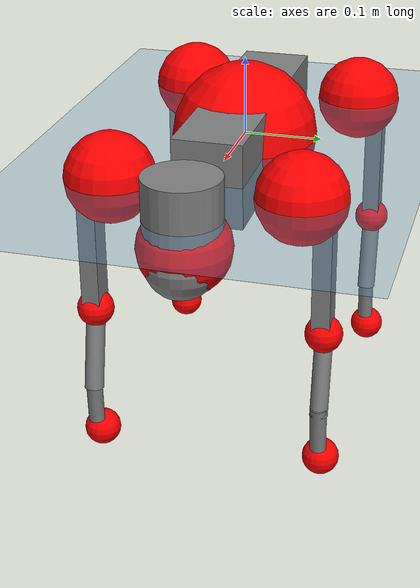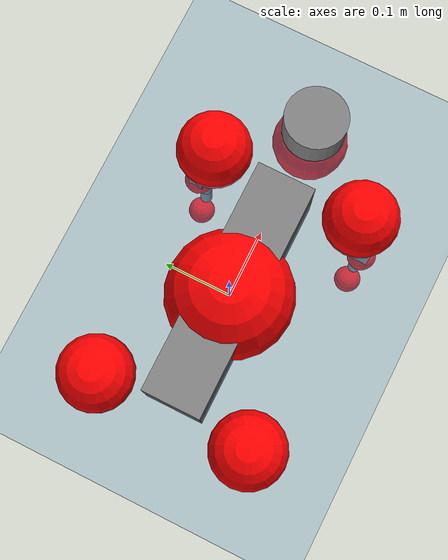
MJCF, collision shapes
<mujoco model="go2">
  <compiler angle="radian" assetdir="assets" balanceinertia="true" inertiafromgeom="false"/>

  <option timestep="0.005" density="1.2" viscosity="2e-05"/>

  <size nkey="1"/>

  <visual>
    <quality shadowsize="8192"/>
    <map shadowclip="0.5"/>
  </visual>

  <default>
    <default class="/">
      <geom contype="0" conaffinity="0" group="1" solref="-1000 -80"/>
      <site size="0.01 0.005 0.005" group="5"/>
      <general forcelimited="true" biastype="affine" gainprm="20" biasprm="0 -20 -0.5"/>
      <default class="go2">
        <joint armature="0.01" damping="0.01" frictionloss="0.2"/>
        <geom condim="1" margin="0.001"/>
        <default class="visual">
          <geom type="mesh" group="2"/>
        </default>
        <default class="collision">
          <geom group="3"/>
          <default class="foot">
            <geom size="0.022 0 0" condim="6" priority="1" friction="0.8 0.02 0.01" solimp="0.015 1 0.022"/>
          </default>
        </default>
        <default class="reward_collision_sphere">
          <geom group="5" rgba="1 0 0 1"/>
        </default>
      </default>
    </default>
  </default>

  <asset>
    <texture type="skybox" colorspace="auto" name="//unnamed_texture_0" builtin="gradient" rgb1="0.95 0.95 0.95" rgb2="0.95 0.95 0.95" width="100" height="600"/>
    <texture type="2d" colorspace="auto" name="texplane" builtin="checker" rgb1="0.345 0.575 0.748" rgb2="0.345 0.575 0.748" markrgb="1 1 1" width="512" height="512"/>
    <material name="MatPlane" class="/" texture="texplane" texuniform="true" texrepeat="2 2" specular="0.9"/>
    <material name="metal" class="/" rgba="0.9 0.95 0.95 1"/>
    <material name="black" class="/" rgba="0 0 0 1"/>
    <material name="white" class="/"/>
    <material name="gray" class="/" rgba="0.671705 0.692426 0.77427 1"/>
    <mesh name="base_0" class="/" file="base_0.obj"/>
    <mesh name="base_1" class="/" file="base_1.obj"/>
    <mesh name="base_2" class="/" file="base_2.obj"/>
    <mesh name="base_3" class="/" file="base_3.obj"/>
    <mesh name="base_4" class="/" file="base_4.obj"/>
    <mesh name="hip_0" class="/" file="hip_0.obj"/>
    <mesh name="hip_1" class="/" file="hip_1.obj"/>
    <mesh name="thigh_0" class="/" file="thigh_0.obj"/>
    <mesh name="thigh_1" class="/" file="thigh_1.obj"/>
    <mesh name="thigh_mirror_0" class="/" file="thigh_mirror_0.obj"/>
    <mesh name="thigh_mirror_1" class="/" file="thigh_mirror_1.obj"/>
    <mesh name="calf_0" class="/" file="calf_0.obj"/>
    <mesh name="calf_1" class="/" file="calf_1.obj"/>
    <mesh name="calf_mirror_0" class="/" file="calf_mirror_0.obj"/>
    <mesh name="calf_mirror_1" class="/" file="calf_mirror_1.obj"/>
    <mesh name="foot" class="/" file="foot.obj"/>
  </asset>

  <worldbody>
    <geom name="floor" class="/" size="100 100 0.125" type="plane" group="0" material="MatPlane"/>
    <light name="toplight_shadow" class="/" pos="0 0 5" dir="0.0990148 0.0990148 -0.990148" type="directional" ambient="0.04 0.04 0.04" diffuse="0.55 0.55 0.55" specular="0.12 0.12 0.12"/>
    <light name="toplight_fill" class="/" pos="0 0 5" dir="0.0990148 0.0990148 -0.990148" type="directional" castshadow="false" ambient="0.04 0.04 0.04" diffuse="0.3 0.3 0.3" specular="0.08 0.08 0.08"/>
    <body name="trunk" childclass="go2" pos="0.000970316 -0.000127304 -0.000403081" quat="1 -5.24251e-05 0.000156567 -8.28249e-05">
      <inertial pos="0.0172681 -0.00287892 -0.00461055" quat="-0.00260866 0.716821 -0.000862437 0.697252" mass="5.77024" diaginertia="0.0810924 0.101178 0.00994827"/>
      <joint name="//unnamed_joint_0" type="free" armature="0" damping="0" frictionloss="0"/>
      <geom name="//unnamed_geom_1" class="visual" material="black" mesh="base_0"/>
      <geom name="//unnamed_geom_2" class="visual" material="black" mesh="base_1"/>
      <geom name="//unnamed_geom_3" class="visual" material="black" mesh="base_2"/>
      <geom name="//unnamed_geom_4" class="visual" material="white" mesh="base_3"/>
      <geom name="//unnamed_geom_5" class="visual" material="gray" mesh="base_4"/>
      <geom name="trunk_1" class="collision" size="0.17493 0.0434768 0.0530092" type="box"/>
      <geom name="trunk_2" class="collision" size="0.0464993 0.0418494" pos="0.269675 0 0.00837135" type="cylinder"/>
      <geom name="trunk_3" class="collision" size="0.0437093" pos="0.277245 0 -0.0502281"/>
      <geom name="//unnamed_geom_9" class="reward_collision_sphere" size="0.0929986"/>
      <geom name="//unnamed_geom_10" class="reward_collision_sphere" size="0.0557991" pos="0.264944 0 -0.0376711"/>
      <site name="imu" pos="-0.0105196 0.00080626 0.021748" size="0.00929986"/>
      <camera name="track" pos="0 -2.01318 0" quat="0.707107 0.707107 0 0" mode="trackcom"/>
      <camera name="ego_camera" pos="0.295224 0 0.0376711" quat="-0.5 -0.5 0.5 0.5"/>
      <body name="FL_hip" pos="0.179826 0.0443168 -0.00139304" quat="1 -0.000345347 0.000254623 0.00010795">
        <inertial pos="-0.00508775 1.18826e-05 -0.000584867" quat="0.497804 0.498951 0.504765 0.498449" mass="0.534035" diaginertia="0.00065125 0.000577786 0.000191386"/>
        <joint name="FL_hip_joint" pos="0 0 0" axis="0.999983 -0.00492424 0.00315598" range="-1.04738 1.05071" armature="0.00956049" damping="0.0109811" frictionloss="0.168682"/>
        <geom name="//unnamed_geom_11" class="visual" material="metal" mesh="hip_0"/>
        <geom name="//unnamed_geom_12" class="visual" material="gray" mesh="hip_1"/>
        <geom name="//unnamed_geom_13" class="collision" size="0.0427793 0.0185997" pos="0 0.0805273 0" quat="0.707107 0.707107 0 0" type="cylinder"/>
        <geom name="//unnamed_geom_14" class="reward_collision_sphere" size="0.0557991" pos="0 0.0704614 0"/>
        <body name="FL_thigh" pos="-0.00216447 0.0981843 0.00230906" quat="0.999999 0.000449892 0.000714631 0.00101162">
          <inertial pos="-0.00347858 -0.0219961 -0.0261849" quat="0.824084 0.0852881 -0.0132094 0.559855" mass="0.903545" diaginertia="0.00450485 0.00584396 0.000358333"/>
          <joint name="FL_thigh_joint" pos="0 0 0" axis="0.0011388 0.999993 -0.00356264" stiffness="0.00773122" range="-1.51434 3.52853" armature="0.00978135" damping="0.0155397" frictionloss="0.174278"/>
          <geom name="//unnamed_geom_15" class="visual" material="metal" mesh="thigh_0"/>
          <geom name="//unnamed_geom_16" class="visual" material="gray" mesh="thigh_1"/>
          <geom name="//unnamed_geom_17" class="collision" size="0.0990435 0.0113923 0.0158098" pos="0 0 -0.0891549" quat="0.707107 0 0.707107 0" type="box"/>
          <body name="FL_calf" pos="-1.07866e-05 0.00174361 -0.177751" quat="1 -0.000151738 0.000307843 0.000317936">
            <inertial pos="0.00606978 -0.00161072 -0.118773" quat="0.710124 -1.11045e-06 -0.00391777 0.704066" mass="0.195902" diaginertia="0.00110742 0.00152706 2.18243e-05"/>
            <joint name="FL_calf_joint" pos="0 0 0" axis="-0.0129732 0.999911 -0.00297814" range="-2.68826 -0.834198" armature="0.00907286" damping="0.00213117" frictionloss="0.188004"/>
            <geom name="//unnamed_geom_18" class="visual" material="gray" mesh="calf_0"/>
            <geom name="//unnamed_geom_19" class="visual" material="black" mesh="calf_1"/>
            <geom name="FL_calf0" class="collision" size="0.0111598 0.0557991" pos="0.00756984 0 -0.0502281" quat="0.994493 0 -0.104807 0" type="cylinder"/>
            <geom name="//unnamed_geom_21" class="collision" size="0.0102298 0.0302245" pos="0.0189246 0 -0.123896" quat="0.999688 0 0.0249974 0" type="cylinder"/>
            <geom name="//unnamed_geom_22" class="visual" pos="0 0 -0.17831" quat="1 0 0 0" material="black" mesh="foot"/>
            <geom name="FL_foot" class="foot" size="0.0162319" pos="-0.00189246 0 -0.17831"/>
            <geom name="//unnamed_geom_24" class="reward_collision_sphere" size="0.0232496"/>
            <geom name="//unnamed_geom_25" class="reward_collision_sphere" size="0.0232496" pos="-0.00189246 0 -0.17831"/>
            <site name="FL_foot" class="foot" pos="-0.00189246 0 -0.17831" size="0.00929986"/>
          </body>
        </body>
      </body>
      <body name="FR_hip" pos="0.180721 -0.0470056 0.000262072" quat="1 -2.55114e-05 2.09539e-05 -0.000246227">
        <inertial pos="-0.00646615 -0.00422105 -0.0022645" quat="0.489504 0.510621 0.50667 0.492888" mass="0.538263" diaginertia="0.000642131 0.000629407 0.000189366"/>
        <joint name="FR_hip_joint" pos="0 0 0" axis="0.999896 -0.00764287 -0.0122521" range="-1.07072 1.05457" armature="0.00932646" damping="0" frictionloss="0.183848"/>
        <geom name="//unnamed_geom_26" class="visual" pos="0 1.47624e-09 6.33188e-08" quat="4.63268e-05 1 0 0" material="metal" mesh="hip_0"/>
        <geom name="//unnamed_geom_27" class="visual" pos="0 2.39315e-09 -1.56612e-07" quat="4.63268e-05 1 0 0" material="gray" mesh="hip_1"/>
        <geom name="//unnamed_geom_28" class="collision" size="0.0427793 0.0185997" pos="0 -0.0805273 0" quat="0.707107 0.707107 0 0" type="cylinder"/>
        <geom name="//unnamed_geom_29" class="reward_collision_sphere" size="0.0557991" pos="0 -0.0704614 0"/>
        <body name="FR_thigh" pos="0.00151066 -0.0978541 -0.00222662" quat="0.999999 -0.000453483 0.000684788 -0.000964017">
          <inertial pos="-0.000865214 0.0231895 -0.0286124" quat="0.550428 -0.0151574 0.0895924 0.829923" mass="0.967308" diaginertia="0.0044772 0.00591766 0.000378535"/>
          <joint name="FR_thigh_joint" pos="0 0 0" axis="-0.00125165 -0.999989 0.00454842" stiffness="0.000570508" range="-3.50024 1.59268" armature="0.00855555" damping="0.0115271" frictionloss="0.18767"/>
          <geom name="//unnamed_geom_30" class="visual" material="metal" mesh="thigh_mirror_0"/>
          <geom name="//unnamed_geom_31" class="visual" material="gray" mesh="thigh_mirror_1"/>
          <geom name="//unnamed_geom_32" class="collision" size="0.0990435 0.0113923 0.0158098" pos="0 0 -0.0891549" quat="0.707107 0 0.707107 0" type="box"/>
          <body name="FR_calf" pos="-0.0012093 -2.13416e-06 -0.177799" quat="1 4.69135e-05 -0.000226684 0.000670276">
            <inertial pos="0.00355413 0.000741381 -0.118351" quat="0.701457 -0.0110695 0.012829 0.71251" mass="0.203435" diaginertia="0.00116595 0.00154974 2.24174e-05"/>
            <joint name="FR_calf_joint" pos="0 0 0" axis="-0.00576077 -0.999976 0.00384321" range="0.782594 2.69395" armature="0.0105788" damping="0.0209311" frictionloss="0.189739"/>
            <geom name="//unnamed_geom_33" class="visual" material="gray" mesh="calf_mirror_0"/>
            <geom name="//unnamed_geom_34" class="visual" material="black" mesh="calf_mirror_1"/>
            <geom name="FR_calf0" class="collision" size="0.0120898 0.0557991" pos="0.0094623 0 -0.0502281" quat="0.995004 0 -0.0998334 0" type="cylinder"/>
            <geom name="//unnamed_geom_36" class="collision" size="0.0102298 0.0302245" pos="0.0189246 0 -0.123896" quat="0.999688 0 0.0249974 0" type="cylinder"/>
            <geom name="//unnamed_geom_37" class="visual" pos="0 0 -0.17831" quat="1 0 0 0" material="black" mesh="foot"/>
            <geom name="FR_foot" class="foot" size="0.0206512" pos="-0.00189246 0 -0.17831"/>
            <geom name="//unnamed_geom_39" class="reward_collision_sphere" size="0.0232496"/>
            <geom name="//unnamed_geom_40" class="reward_collision_sphere" size="0.0232496" pos="-0.00189246 0 -0.17831"/>
            <site name="FR_foot" class="foot" pos="-0.00189246 0 -0.17831" size="0.00929986"/>
          </body>
        </body>
      </body>
      <body name="RL_hip" pos="-0.180201 0.0455557 -0.00312505" quat="1 -6.51565e-06 2.59178e-06 3.39642e-06">
        <inertial pos="0.00479557 0.00424496 -0.00178613" quat="0.501194 0.508889 0.493079 0.496699" mass="0.564747" diaginertia="0.000714517 0.000645369 0.000201364"/>
        <joint name="RL_hip_joint" pos="0 0 0" axis="-0.99995 -0.00292604 -0.0095759" range="-1.05206 1.03533" armature="0.009571" damping="0" frictionloss="0.187441"/>
        <geom name="//unnamed_geom_41" class="visual" pos="-9.50386e-10 0 -1.86297e-07" quat="4.63268e-05 0 1 0" material="metal" mesh="hip_0"/>
        <geom name="//unnamed_geom_42" class="visual" pos="-1.54069e-09 0 -1.65219e-07" quat="4.63268e-05 0 1 0" material="gray" mesh="hip_1"/>
        <geom name="//unnamed_geom_43" class="collision" size="0.0427793 0.0185997" pos="0 0.0805273 0" quat="0.707107 0.707107 0 0" type="cylinder"/>
        <geom name="//unnamed_geom_44" class="reward_collision_sphere" size="0.0557991" pos="0 0.0704614 0"/>
        <body name="RL_thigh" pos="0.000298389 0.0963176 0.000618984" quat="1 1.13907e-05 7.29791e-05 4.18032e-05">
          <inertial pos="-0.00595464 -0.0226247 -0.0301549" quat="0.829535 0.0847139 -0.0200395 0.551628" mass="0.901998" diaginertia="0.00425307 0.00603128 0.000350943"/>
          <joint name="RL_thigh_joint" pos="0 0 0" axis="0.0002474 0.999953 0.00973006" stiffness="0.0148182" range="-0.537986 4.50026" armature="0.00881285" damping="0" frictionloss="0.184174"/>
          <geom name="//unnamed_geom_45" class="visual" material="metal" mesh="thigh_0"/>
          <geom name="//unnamed_geom_46" class="visual" material="gray" mesh="thigh_1"/>
          <geom name="//unnamed_geom_47" class="collision" size="0.0990435 0.0113923 0.0158098" pos="0 0 -0.0891549" quat="0.707107 0 0.707107 0" type="box"/>
          <body name="RL_calf" pos="-0.000208231 9.22227e-05 -0.177947" quat="1 -0.000235995 -1.58141e-05 -0.000102642">
            <inertial pos="0.00672053 0.00219786 -0.117793" quat="0.705103 -0.000197664 -0.00321508 0.709098" mass="0.199558" diaginertia="0.0011373 0.00161127 2.23249e-05"/>
            <joint name="RL_calf_joint" pos="0 0 0" axis="0.0019809 0.999951 -0.00974488" stiffness="0.0034744" range="-2.66888 -0.878029" armature="0.0105848" damping="0.0169965" frictionloss="0.162205"/>
            <geom name="//unnamed_geom_48" class="visual" material="gray" mesh="calf_0"/>
            <geom name="//unnamed_geom_49" class="visual" material="black" mesh="calf_1"/>
            <geom name="RL_calf0" class="collision" size="0.0120898 0.0557991" pos="0.0094623 0 -0.0502281" quat="0.995004 0 -0.0998334 0" type="cylinder"/>
            <geom name="//unnamed_geom_51" class="collision" size="0.0102298 0.0302245" pos="0.0189246 0 -0.123896" quat="0.999688 0 0.0249974 0" type="cylinder"/>
            <geom name="//unnamed_geom_52" class="visual" pos="0 0 -0.17831" quat="1 0 0 0" material="black" mesh="foot"/>
            <geom name="RL_foot" class="foot" size="0.0182035" pos="-0.00189246 0 -0.17831"/>
            <geom name="//unnamed_geom_54" class="reward_collision_sphere" size="0.0232496"/>
            <geom name="//unnamed_geom_55" class="reward_collision_sphere" size="0.0232496" pos="-0.00189246 0 -0.17831"/>
            <site name="RL_foot" class="foot" pos="-0.00189246 0 -0.17831" size="0.00929986"/>
          </body>
        </body>
      </body>
      <body name="RR_hip" pos="-0.180522 -0.0481043 -5.73381e-05" quat="1 0.00018764 -0.000164833 0.000460851">
        <inertial pos="0.00361439 -0.00082083 -0.00289338" quat="0.492864 0.504386 0.492582 0.509944" mass="0.544792" diaginertia="0.00064904 0.000597552 0.00019052"/>
        <joint name="RR_hip_joint" pos="0 0 0" axis="-0.999902 0.000424785 0.0140246" stiffness="0.00227129" range="-1.10056 1.06323" armature="0.00926114" damping="0.00167261" frictionloss="0.184783"/>
        <geom name="//unnamed_geom_56" class="visual" pos="9.52475e-10 1.47624e-09 -2.49616e-07" quat="2.14617e-09 4.63268e-05 4.63268e-05 -1" material="metal" mesh="hip_0"/>
        <geom name="//unnamed_geom_57" class="visual" pos="1.53552e-09 2.39315e-09 -8.60774e-09" quat="2.14617e-09 4.63268e-05 4.63268e-05 -1" material="gray" mesh="hip_1"/>
        <geom name="//unnamed_geom_58" class="collision" size="0.0427793 0.0185997" pos="0 -0.0805273 0" quat="0.707107 0.707107 0 0" type="cylinder"/>
        <geom name="//unnamed_geom_59" class="reward_collision_sphere" size="0.0557991" pos="0 -0.0704614 0"/>
        <body name="RR_thigh" pos="0.00270297 -0.0958555 -0.00177965" quat="0.999999 0.000646544 -0.00100449 0.000228582">
          <inertial pos="-0.00302033 0.0238526 -0.0284671" quat="0.551802 -0.0198882 0.0846248 0.829432" mass="0.881416" diaginertia="0.00429141 0.00591377 0.000356759"/>
          <joint name="RR_thigh_joint" pos="0 0 0" axis="-0.000106472 -0.999998 0.00197582" stiffness="0.0035242" range="-4.51013 0.539943" armature="0.00976682" damping="0.0157356" frictionloss="0.189053"/>
          <geom name="//unnamed_geom_60" class="visual" material="metal" mesh="thigh_mirror_0"/>
          <geom name="//unnamed_geom_61" class="visual" material="gray" mesh="thigh_mirror_1"/>
          <geom name="//unnamed_geom_62" class="collision" size="0.0990435 0.0113923 0.0158098" pos="0 0 -0.0891549" quat="0.707107 0 0.707107 0" type="box"/>
          <body name="RR_calf" pos="-6.91026e-05 0.00219397 -0.177694" quat="0.999999 -0.000279857 0.00127736 -1.60624e-05">
            <inertial pos="0.00825664 0.000259707 -0.119458" quat="0.704684 -0.00362385 0.0132182 0.709389" mass="0.197779" diaginertia="0.00111384 0.00151416 2.16351e-05"/>
            <joint name="RR_calf_joint" pos="0 0 0" axis="0.00104758 -0.999999 0.000936933" range="0.828412 2.78025" armature="0.00937015" damping="0.0204275" frictionloss="0.188932"/>
            <geom name="//unnamed_geom_63" class="visual" material="gray" mesh="calf_mirror_0"/>
            <geom name="//unnamed_geom_64" class="visual" material="black" mesh="calf_mirror_1"/>
            <geom name="RR_calf0" class="collision" size="0.0120898 0.0557991" pos="0.0094623 0 -0.0502281" quat="0.995004 0 -0.0998334 0" type="cylinder"/>
            <geom name="//unnamed_geom_66" class="collision" size="0.0102298 0.0302245" pos="0.0189246 0 -0.123896" quat="0.999688 0 0.0249974 0" type="cylinder"/>
            <geom name="//unnamed_geom_67" class="visual" pos="0 0 -0.17831" quat="1 0 0 0" material="black" mesh="foot"/>
            <geom name="RR_foot" class="foot" size="0.0198561" pos="-0.00189246 0 -0.17831"/>
            <geom name="//unnamed_geom_69" class="reward_collision_sphere" size="0.0232496"/>
            <geom name="//unnamed_geom_70" class="reward_collision_sphere" size="0.0232496" pos="-0.00189246 0 -0.17831"/>
            <site name="RR_foot" class="foot" pos="-0.00189246 0 -0.17831" size="0.00929986"/>
          </body>
        </body>
      </body>
    </body>
  </worldbody>

  <contact>
    <pair class="/" geom1="floor" geom2="FL_foot" name="//unnamed_contact_0"/>
    <pair class="/" geom1="floor" geom2="FR_foot" name="//unnamed_contact_1"/>
    <pair class="/" geom1="floor" geom2="RL_foot" name="//unnamed_contact_2"/>
    <pair class="/" geom1="floor" geom2="RR_foot" name="//unnamed_contact_3"/>
  </contact>

  <actuator>
    <general name="FL_hip" class="/" joint="FL_hip_joint" forcerange="-19.9741 19.9741" gainprm="18.1447" biasprm="0 -18.1447 -0.451025"/>
    <general name="FL_thigh" class="/" joint="FL_thigh_joint" forcerange="-19.8182 19.8182" gainprm="18.1447" biasprm="0 -18.1447 -0.451025"/>
    <general name="FL_calf" class="/" joint="FL_calf_joint" forcerange="-42.6808 42.6808" gainprm="18.1447" biasprm="0 -18.1447 -0.451025"/>
    <general name="FR_hip" class="/" joint="FR_hip_joint" forcerange="-22.407 22.407" gainprm="18.1447" biasprm="0 -18.1447 -0.451025"/>
    <general name="FR_thigh" class="/" joint="FR_thigh_joint" forcerange="-23.7211 23.7211" gainprm="18.1447" biasprm="0 -18.1447 -0.451025"/>
    <general name="FR_calf" class="/" joint="FR_calf_joint" forcerange="-43.7566 43.7566" gainprm="18.1447" biasprm="0 -18.1447 -0.451025"/>
    <general name="RL_hip" class="/" joint="RL_hip_joint" forcerange="-22.2416 22.2416" gainprm="18.1447" biasprm="0 -18.1447 -0.451025"/>
    <general name="RL_thigh" class="/" joint="RL_thigh_joint" forcerange="-20.2741 20.2741" gainprm="18.1447" biasprm="0 -18.1447 -0.451025"/>
    <general name="RL_calf" class="/" joint="RL_calf_joint" forcerange="-41.9484 41.9484" gainprm="18.1447" biasprm="0 -18.1447 -0.451025"/>
    <general name="RR_hip" class="/" joint="RR_hip_joint" forcerange="-22.6664 22.6664" gainprm="18.1447" biasprm="0 -18.1447 -0.451025"/>
    <general name="RR_thigh" class="/" joint="RR_thigh_joint" forcerange="-24.2369 24.2369" gainprm="18.1447" biasprm="0 -18.1447 -0.451025"/>
    <general name="RR_calf" class="/" joint="RR_calf_joint" forcerange="-40.7285 40.7285" gainprm="18.1447" biasprm="0 -18.1447 -0.451025"/>
  </actuator>

  <sensor>
    <gyro site="imu" name="imu_angular_velocity"/>
    <velocimeter site="imu" name="imu_linear_velocity"/>
    <framelinvel objtype="site" objname="FL_foot" name="FL_foot_global_linear_velocity"/>
    <framelinvel objtype="site" objname="FR_foot" name="FR_foot_global_linear_velocity"/>
    <framelinvel objtype="site" objname="RL_foot" name="RL_foot_global_linear_velocity"/>
    <framelinvel objtype="site" objname="RR_foot" name="RR_foot_global_linear_velocity"/>
  </sensor>

  <keyframe>
    <key name="home" qpos="0 0 0.325 1 0 0 0 0.1 0.8 -1.5 -0.1 -0.8 1.5 -0.1 0.8 -1.5 0.1 -0.8 1.5"/>
  </keyframe>
</mujoco>
